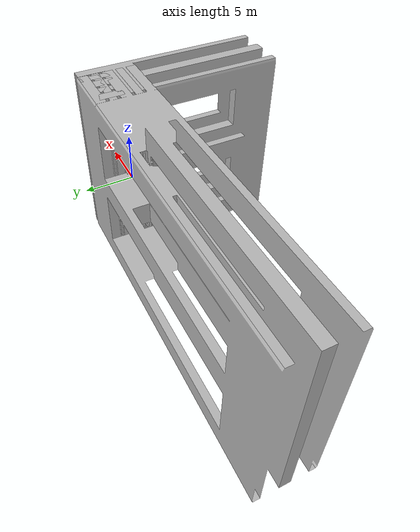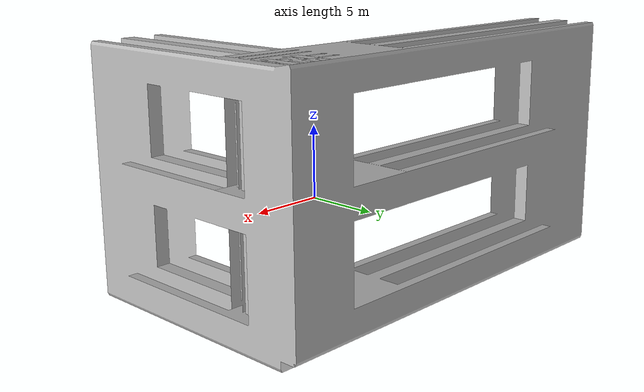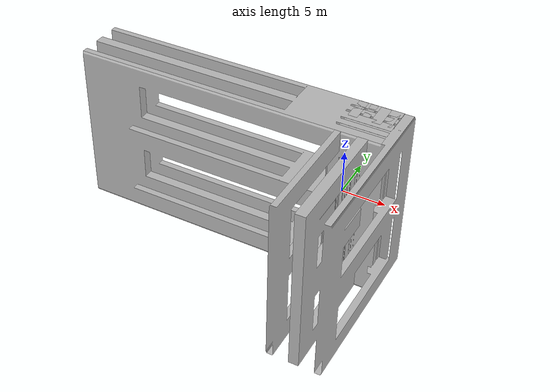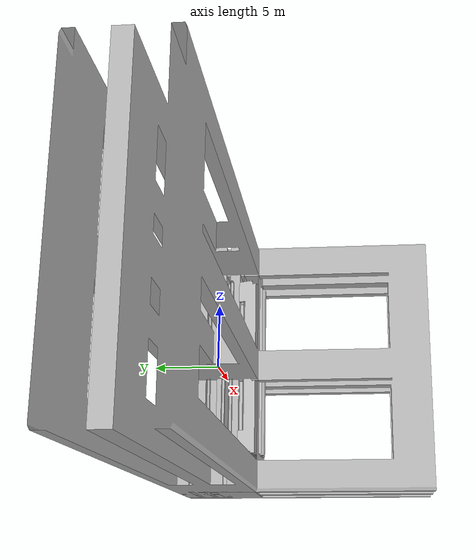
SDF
<sdf version='1.4'>
	<model name='2pallets+stepping_blocks'>
		<static>1</static>
		<link name='pallet_1'>
			<pose>-0.5 0 0.072 0 0 -1.5708</pose>
			<collision name='collision'>
				<geometry>
					<mesh>
						<uri>model://pallet_benchmark/mesh/pallet.dae</uri>
						<scale>0.787 24.75 1.6197</scale>
					</mesh>
				</geometry>
				<surface>
					<bounce>
						<restitution_coefficient>0.01</restitution_coefficient>
						<threshold>5</threshold>
					</bounce>
					<friction>
						<ode>
							<mu>10</mu>
							<mu2>10</mu2>
						</ode>
					</friction>
					<contact>
						<ode>
							<soft_cfm>0.001</soft_cfm>
							<kp>100000</kp>
							<kd>1000</kd>
						</ode>
					</contact>
				</surface>
				<max_contacts>10</max_contacts>
			</collision>
			<visual name='visual'>
				<geometry>
					<mesh>
						<uri>model://pallet_benchmark/mesh/pallet.dae</uri>
						<scale>0.787 24.75 1.6197</scale>
					</mesh>
				</geometry>
			</visual>
		</link>
		<link name='pallet_2'>
			<pose>3 0 0.072 0 -0 0</pose>
			<collision name='collision'>
				<geometry>
					<mesh>
						<uri>model://pallet_benchmark/mesh/pallet.dae</uri>
						<scale>0.787 13.50 1.6197</scale>
					</mesh>
				</geometry>
				<surface>
					<bounce>
						<restitution_coefficient>0.01</restitution_coefficient>
						<threshold>5</threshold>
					</bounce>
					<friction>
						<ode>
							<mu>10</mu>
							<mu2>10</mu2>
						</ode>
					</friction>
					<contact>
						<ode>
							<soft_cfm>0.001</soft_cfm>
							<kp>100000</kp>
							<kd>1000</kd>
						</ode>
					</contact>
				</surface>
				<max_contacts>10</max_contacts>
			</collision>
			<visual name='visual'>
				<geometry>
					<mesh>
						<uri>model://pallet_benchmark/mesh/pallet.dae</uri>
						<scale>0.787 13.50 1.6197</scale>
					</mesh>
				</geometry>
			</visual>
		</link>
		<link name='block_1'>
			<pose>0.783136 -0.259336 0.05 0 -0 0.8</pose>
			<collision name='collision'>
				<geometry>
					<mesh>
						<uri>model://blockwood_benchmark/mesh/pallet.dae</uri>
						<scale>0.246 2.46 1.1249</scale>
					</mesh>
				</geometry>
				<surface>
					<bounce>
						<restitution_coefficient>0.01</restitution_coefficient>
						<threshold>5</threshold>
					</bounce>
					<friction>
						<ode>
							<mu>10</mu>
							<mu2>10</mu2>
						</ode>
					</friction>
					<contact>
						<ode>
							<soft_cfm>0.001</soft_cfm>
							<kp>100000</kp>
							<kd>1000</kd>
						</ode>
					</contact>
				</surface>
				<max_contacts>10</max_contacts>
			</collision>
			<visual name='visual'>
				<geometry>
					<mesh>
						<uri>model://blockwood_benchmark/mesh/pallet.dae</uri>
						<scale>0.246 2.46 1.1249</scale>
					</mesh>
				</geometry>
			</visual>
		</link>
		<link name='block_2'>
			<pose>0.794058 0.11412 0.05 0 -0 0.56</pose>
			<collision name='collision'>
				<geometry>
					<mesh>
						<uri>model://blockwood_benchmark/mesh/pallet.dae</uri>
						<scale>0.246 2.46 1.1249</scale>
					</mesh>
				</geometry>
				<surface>
					<bounce>
						<restitution_coefficient>0.01</restitution_coefficient>
						<threshold>5</threshold>
					</bounce>
					<friction>
						<ode>
							<mu>10</mu>
							<mu2>10</mu2>
						</ode>
					</friction>
					<contact>
						<ode>
							<soft_cfm>0.001</soft_cfm>
							<kp>100000</kp>
							<kd>1000</kd>
						</ode>
					</contact>
				</surface>
				<max_contacts>10</max_contacts>
			</collision>
			<visual name='visual'>
				<geometry>
					<mesh>
						<uri>model://blockwood_benchmark/mesh/pallet.dae</uri>
						<scale>0.246 2.46 1.1249</scale>
					</mesh>
				</geometry>
			</visual>
		</link>
		<link name='block_3'>
			<pose>1.09791 -0.142692 0.05 0 0 -0.36</pose>
			<collision name='collision'>
				<geometry>
					<mesh>
						<uri>model://blockwood_benchmark/mesh/pallet.dae</uri>
						<scale>0.246 2.46 1.1249</scale>
					</mesh>
				</geometry>
				<surface>
					<bounce>
						<restitution_coefficient>0.01</restitution_coefficient>
						<threshold>5</threshold>
					</bounce>
					<friction>
						<ode>
							<mu>10</mu>
							<mu2>10</mu2>
						</ode>
					</friction>
					<contact>
						<ode>
							<soft_cfm>0.001</soft_cfm>
							<kp>100000</kp>
							<kd>1000</kd>
						</ode>
					</contact>
				</surface>
				<max_contacts>10</max_contacts>
			</collision>
			<visual name='visual'>
				<geometry>
					<mesh>
						<uri>model://blockwood_benchmark/mesh/pallet.dae</uri>
						<scale>0.246 2.46 1.1249</scale>
					</mesh>
				</geometry>
			</visual>
		</link>
		<link name='block_4'>
			<pose>1.16288 0.17517 0.05 0 -0 0</pose>
			<collision name='collision'>
				<geometry>
					<mesh>
						<uri>model://blockwood_benchmark/mesh/pallet.dae</uri>
						<scale>0.246 2.46 1.1249</scale>
					</mesh>
				</geometry>
				<surface>
					<bounce>
						<restitution_coefficient>0.01</restitution_coefficient>
						<threshold>5</threshold>
					</bounce>
					<friction>
						<ode>
							<mu>10</mu>
							<mu2>10</mu2>
						</ode>
					</friction>
					<contact>
						<ode>
							<soft_cfm>0.001</soft_cfm>
							<kp>100000</kp>
							<kd>1000</kd>
						</ode>
					</contact>
				</surface>
				<max_contacts>10</max_contacts>
			</collision>
			<visual name='visual'>
				<geometry>
					<mesh>
						<uri>model://blockwood_benchmark/mesh/pallet.dae</uri>
						<scale>0.246 2.46 1.1249</scale>
					</mesh>
				</geometry>
			</visual>
		</link>
		<link name='block_5'>
			<pose>1.37008 -0.40017 0.05 0 -0 0.52</pose>
			<collision name='collision'>
				<geometry>
					<mesh>
						<uri>model://blockwood_benchmark/mesh/pallet.dae</uri>
						<scale>0.246 2.46 1.1249</scale>
					</mesh>
				</geometry>
				<surface>
					<bounce>
						<restitution_coefficient>0.01</restitution_coefficient>
						<threshold>5</threshold>
					</bounce>
					<friction>
						<ode>
							<mu>10</mu>
							<mu2>10</mu2>
						</ode>
					</friction>
					<contact>
						<ode>
							<soft_cfm>0.001</soft_cfm>
							<kp>100000</kp>
							<kd>1000</kd>
						</ode>
					</contact>
				</surface>
				<max_contacts>10</max_contacts>
			</collision>
			<visual name='visual'>
				<geometry>
					<mesh>
						<uri>model://blockwood_benchmark/mesh/pallet.dae</uri>
						<scale>0.246 2.46 1.1249</scale>
					</mesh>
				</geometry>
			</visual>
		</link>
		<link name='block_6'>
			<pose>1.46639 -0.072299 0.05 0 -0 0</pose>
			<collision name='collision'>
				<geometry>
					<mesh>
						<uri>model://blockwood_benchmark/mesh/pallet.dae</uri>
						<scale>0.246 2.46 1.1249</scale>
					</mesh>
				</geometry>
				<surface>
					<bounce>
						<restitution_coefficient>0.01</restitution_coefficient>
						<threshold>5</threshold>
					</bounce>
					<friction>
						<ode>
							<mu>10</mu>
							<mu2>10</mu2>
						</ode>
					</friction>
					<contact>
						<ode>
							<soft_cfm>0.001</soft_cfm>
							<kp>100000</kp>
							<kd>1000</kd>
						</ode>
					</contact>
				</surface>
				<max_contacts>10</max_contacts>
			</collision>
			<visual name='visual'>
				<geometry>
					<mesh>
						<uri>model://blockwood_benchmark/mesh/pallet.dae</uri>
						<scale>0.246 2.46 1.1249</scale>
					</mesh>
				</geometry>
			</visual>
		</link>
		<link name='block_7'>
			<pose>1.48533 0.241091 0.05 0 -0 0.88</pose>
			<collision name='collision'>
				<geometry>
					<mesh>
						<uri>model://blockwood_benchmark/mesh/pallet.dae</uri>
						<scale>0.246 2.46 1.1249</scale>
					</mesh>
				</geometry>
				<surface>
					<bounce>
						<restitution_coefficient>0.01</restitution_coefficient>
						<threshold>5</threshold>
					</bounce>
					<friction>
						<ode>
							<mu>10</mu>
							<mu2>10</mu2>
						</ode>
					</friction>
					<contact>
						<ode>
							<soft_cfm>0.001</soft_cfm>
							<kp>100000</kp>
							<kd>1000</kd>
						</ode>
					</contact>
				</surface>
				<max_contacts>10</max_contacts>
			</collision>
		<visual name='visual'>
			<geometry>
				<mesh>
					<uri>model://blockwood_benchmark/mesh/pallet.dae</uri>
					<scale>0.246 2.46 1.1249</scale>
				</mesh>
			</geometry>
		</visual>
	</link>
	<link name='block_8'>
		<pose>1.7306 -0.340131 0.05 0 -0 0.24</pose>
		<collision name='collision'>
			<geometry>
				<mesh>
					<uri>model://blockwood_benchmark/mesh/pallet.dae</uri>
					<scale>0.246 2.46 1.1249</scale>
				</mesh>
			</geometry>
			<surface>
				<bounce>
					<restitution_coefficient>0.01</restitution_coefficient>
					<threshold>5</threshold>
				</bounce>
				<friction>
					<ode>
						<mu>10</mu>
						<mu2>10</mu2>
					</ode>
				</friction>
				<contact>
					<ode>
						<soft_cfm>0.001</soft_cfm>
						<kp>100000</kp>
						<kd>1000</kd>
					</ode>
				</contact>
			</surface>
			<max_contacts>10</max_contacts>
		</collision>
		<visual name='visual'>
			<geometry>
				<mesh>
					<uri>model://blockwood_benchmark/mesh/pallet.dae</uri>
					<scale>0.246 2.46 1.1249</scale>
				</mesh>
			</geometry>
		</visual>
	</link>
	<link name='block_9'>
		<pose>1.77848 0.045718 0.05 0 -0 0.48</pose>
		<collision name='collision'>
			<geometry>
				<mesh>
					<uri>model://blockwood_benchmark/mesh/pallet.dae</uri>
					<scale>0.246 2.46 1.1249</scale>
				</mesh>
			</geometry>
			<surface>
				<bounce>
					<restitution_coefficient>0.01</restitution_coefficient>
					<threshold>5</threshold>
				</bounce>
				<friction>
					<ode>
						<mu>10</mu>
						<mu2>10</mu2>
					</ode>
				</friction>
				<contact>
					<ode>
						<soft_cfm>0.001</soft_cfm>
						<kp>100000</kp>
						<kd>1000</kd>
					</ode>
				</contact>
			</surface>
			<max_contacts>10</max_contacts>
		</collision>
		<visual name='visual'>
			<geometry>
				<mesh>
					<uri>model://blockwood_benchmark/mesh/pallet.dae</uri>
					<scale>0.246 2.46 1.1249</scale>
				</mesh>
			</geometry>
		</visual>
	</link>
	<link name='block_10'>
		<pose>2.03712 -0.192702 0.05 0 0 -1.56</pose>
		<collision name='collision'>
			<geometry>
				<mesh>
					<uri>model://blockwood_benchmark/mesh/pallet.dae</uri>
					<scale>0.246 2.46 1.1249</scale>
				</mesh>
			</geometry>
			<surface>
				<bounce>
					<restitution_coefficient>0.01</restitution_coefficient>
					<threshold>5</threshold>
				</bounce>
				<friction>
					<ode>
						<mu>10</mu>
						<mu2>10</mu2>
					</ode>
				</friction>
				<contact>
					<ode>
						<soft_cfm>0.001</soft_cfm>
						<kp>100000</kp>
						<kd>1000</kd>
					</ode>
				</contact>
			</surface>
			<max_contacts>10</max_contacts>
		</collision>
		<visual name='visual'>
			<geometry>
				<mesh>
					<uri>model://blockwood_benchmark/mesh/pallet.dae</uri>
					<scale>0.246 2.46 1.1249</scale>
				</mesh>
			</geometry>
		</visual>
	</link>
	<link name='block_11'>
		<pose>2.06242 0.171136 0.05 0 -0 0.8</pose>
		<collision name='collision'>
			<geometry>
				<mesh>
					<uri>model://blockwood_benchmark/mesh/pallet.dae</uri>
					<scale>0.246 2.46 1.1249</scale>
				</mesh>
			</geometry>
			<surface>
				<bounce>
					<restitution_coefficient>0.01</restitution_coefficient>
					<threshold>5</threshold>
				</bounce>
				<friction>
					<ode>
						<mu>10</mu>
						<mu2>10</mu2>
					</ode>
				</friction>
				<contact>
					<ode>
						<soft_cfm>0.001</soft_cfm>
						<kp>100000</kp>
						<kd>1000</kd>
					</ode>
				</contact>
			</surface>
			<max_contacts>10</max_contacts>
		</collision>
		<visual name='visual'>
			<geometry>
				<mesh>
					<uri>model://blockwood_benchmark/mesh/pallet.dae</uri>
					<scale>0.246 2.46 1.1249</scale>
				</mesh>
			</geometry>
		</visual>
	</link>
	<link name='block_12'>
		<pose>2.37657 -0.266385 0.05 0 -0 0.48</pose>
		<collision name='collision'>
			<geometry>
				<mesh>
					<uri>model://blockwood_benchmark/mesh/pallet.dae</uri>
					<scale>0.246 2.46 1.1249</scale>
				</mesh>
			</geometry>
			<surface>
				<bounce>
					<restitution_coefficient>0.01</restitution_coefficient>
					<threshold>5</threshold>
				</bounce>
				<friction>
					<ode>
						<mu>10</mu>
						<mu2>10</mu2>
					</ode>
				</friction>
				<contact>
					<ode>
						<soft_cfm>0.001</soft_cfm>
						<kp>100000</kp>
						<kd>1000</kd>
					</ode>
				</contact>
			</surface>
			<max_contacts>10</max_contacts>
		</collision>
		<visual name='visual'>
			<geometry>
				<mesh>
					<uri>model://blockwood_benchmark/mesh/pallet.dae</uri>
					<scale>0.246 2.46 1.1249</scale>
				</mesh>
			</geometry>
		</visual>
	</link>
	<link name='block_13'>
		<pose>2.38173 0.046632 0.05 0 -0 0</pose>
		<collision name='collision'>
			<geometry>
				<mesh>
					<uri>model://blockwood_benchmark/mesh/pallet.dae</uri>
					<scale>0.246 2.46 1.1249</scale>
				</mesh>
			</geometry>
			<surface>
				<bounce>
					<restitution_coefficient>0.01</restitution_coefficient>
					<threshold>5</threshold>
				</bounce>
				<friction>
					<ode>
						<mu>10</mu>
						<mu2>10</mu2>
					</ode>
				</friction>
				<contact>
					<ode>
						<soft_cfm>0.001</soft_cfm>
						<kp>100000</kp>
						<kd>1000</kd>
					</ode>
				</contact>
			</surface>
			<max_contacts>10</max_contacts>
		</collision>
		<visual name='visual'>
			<geometry>
				<mesh>
					<uri>model://blockwood_benchmark/mesh/pallet.dae</uri>
					<scale>0.246 2.46 1.1249</scale>
				</mesh>
			</geometry>
		</visual>
	</link>
	<link name='block_14'>
		<pose>2.38179 0.359519 0.05 0 0 -0.52</pose>
		<collision name='collision'>
			<geometry>
				<mesh>
					<uri>model://blockwood_benchmark/mesh/pallet.dae</uri>
					<scale>0.246 2.46 1.1249</scale>
				</mesh>
			</geometry>
			<surface>
				<bounce>
					<restitution_coefficient>0.01</restitution_coefficient>
					<threshold>5</threshold>
				</bounce>
				<friction>
					<ode>
						<mu>10</mu>
						<mu2>10</mu2>
					</ode>
				</friction>
				<contact>
					<ode>
						<soft_cfm>0.001</soft_cfm>
						<kp>100000</kp>
						<kd>1000</kd>
					</ode>
				</contact>
			</surface>
			<max_contacts>10</max_contacts>
		</collision>
		<visual name='visual'>
			<geometry>
				<mesh>
					<uri>model://blockwood_benchmark/mesh/pallet.dae</uri>
					<scale>0.246 2.46 1.1249</scale>
				</mesh>
			</geometry>
		</visual>
	</link>
</model>
</sdf>
